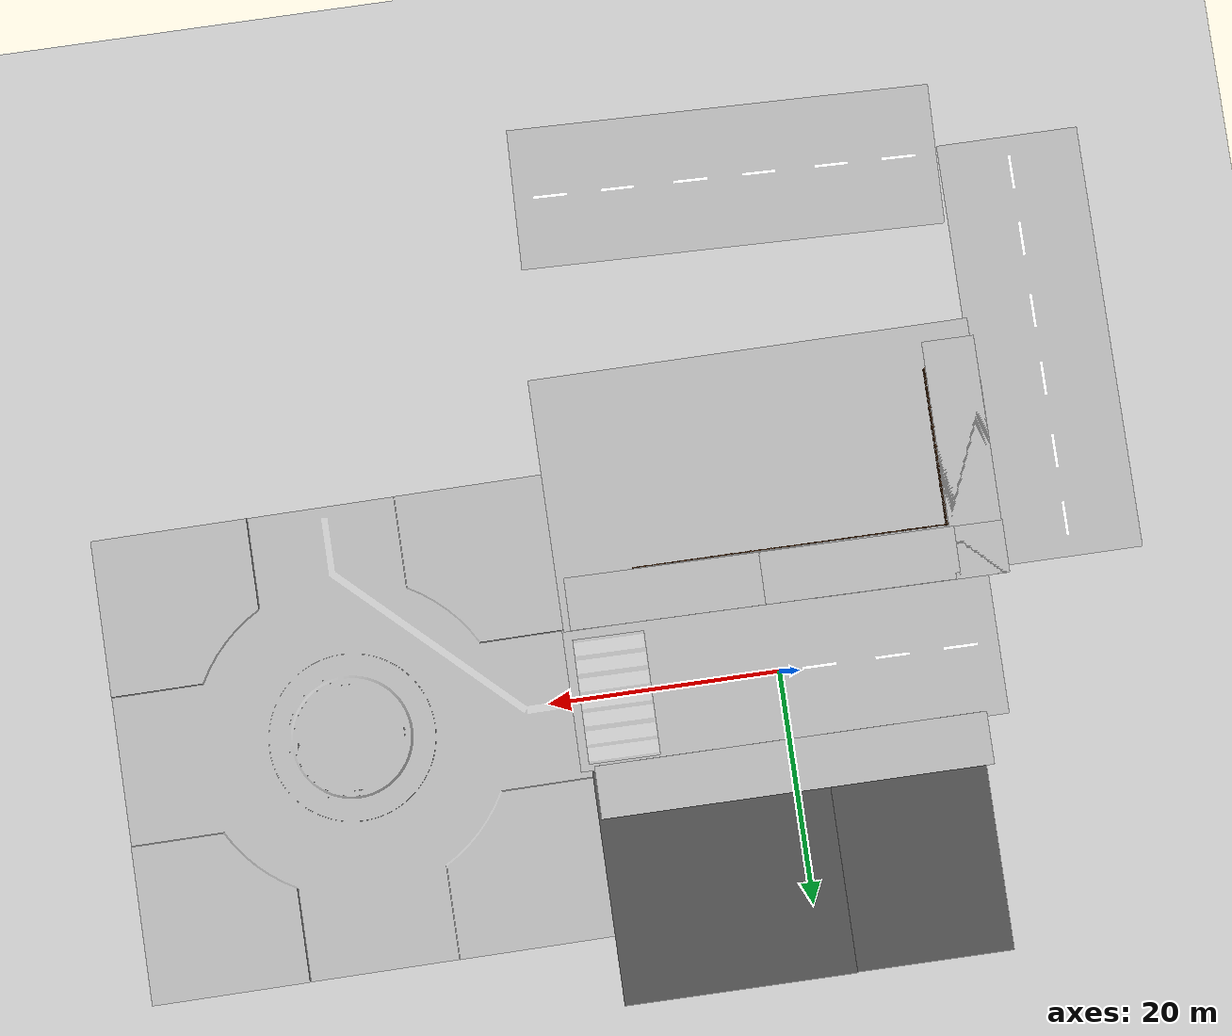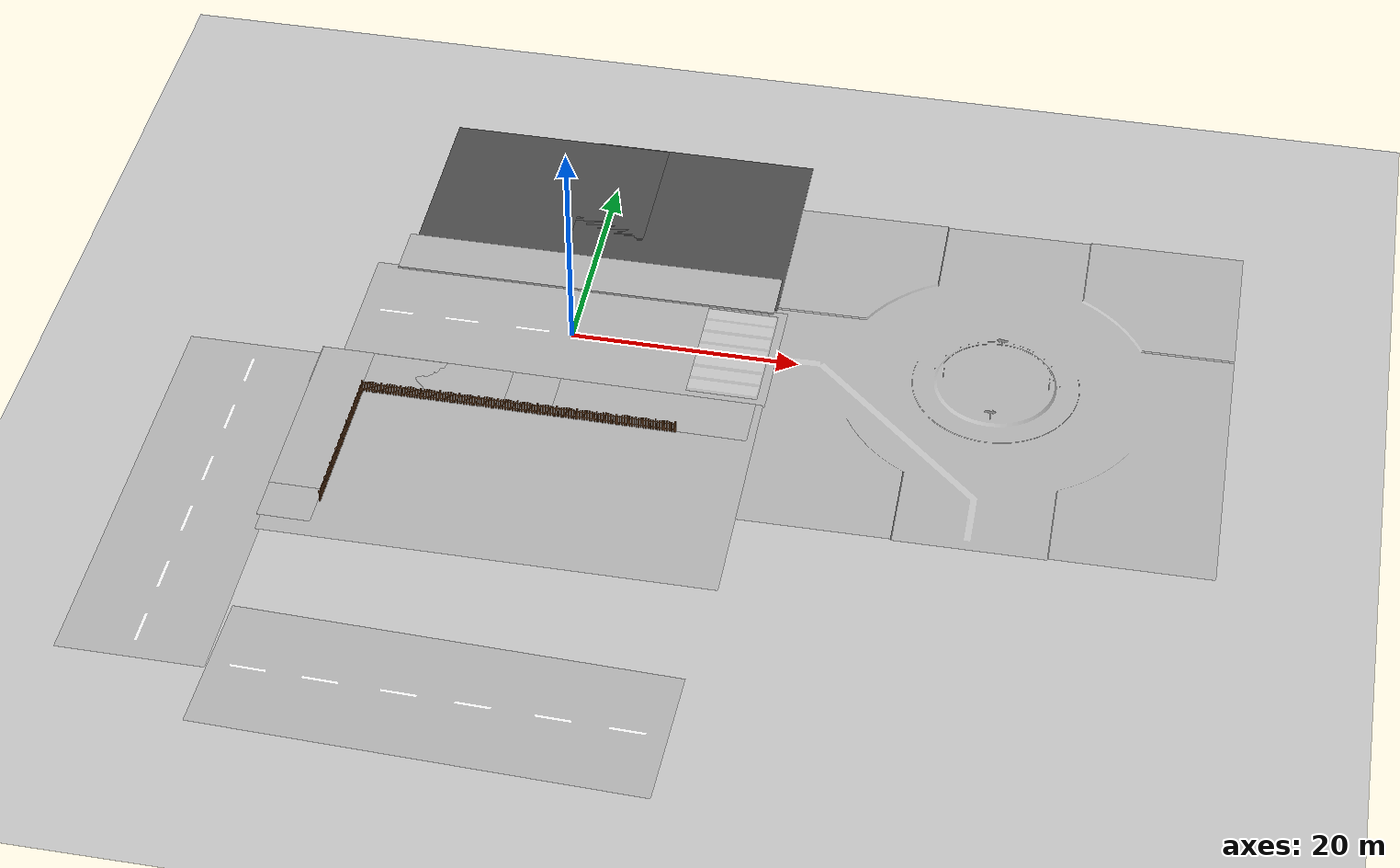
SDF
<sdf version="1.6">
 <world name="default">
  <light name="sun" type="directional">
   <pose>0 0 10 0 -0 0</pose>
   <diffuse>0.8 0.8 0.8 1</diffuse>
   <specular>0.2 0.2 0.2 1</specular>
   <attenuation>
    <range>1000</range>
    <constant>0.9</constant>
    <linear>0.01</linear>
    <quadratic>0.001</quadratic>
   </attenuation>
   <direction>-0.5 0.1 -0.9</direction>
  </light>
  <model name="ground_plane">
   <static>1</static>
   <link name="link">
    <collision name="collision">
     <geometry><plane><normal>0 0 1</normal><size>100 100</size></plane></geometry>
     <surface><friction><ode><mu>100</mu><mu2>50</mu2></ode></friction></surface>
    </collision>
    <visual name="visual">
     <cast_shadows>0</cast_shadows>
     <geometry><plane><normal>0 0 1</normal><size>100 100</size></plane></geometry>
     <material>
      <script><uri>file://media/materials/scripts/gazebo.material</uri><name>Gazebo/Grey</name></script>
     </material>
    </visual>
   </link>
  </model>
  <gravity>0 0 -9.8</gravity>
  <magnetic_field>6e-06 2.3e-05 -4.2e-05</magnetic_field>
  <atmosphere type="adiabatic"/>
  <physics name="default_physics" default="0" type="ode">
   <max_step_size>0.001</max_step_size>
   <real_time_factor>1</real_time_factor>
   <real_time_update_rate>1000</real_time_update_rate>
  </physics>
  <scene><ambient>0.4 0.4 0.4 1</ambient><background>0.7 0.7 0.7 1</background><shadows>1</shadows></scene>
  <spherical_coordinates>
   <surface_model>EARTH_WGS84</surface_model>
   <latitude_deg>0</latitude_deg>
   <longitude_deg>0</longitude_deg>
   <elevation>0</elevation>
   <heading_deg>0</heading_deg>
  </spherical_coordinates>
  <model name="street">
   <static>1</static>
   <link name="body">
    <inertial>
     <pose>1 2 5 -1.14159 1.14159 -1.14159</pose>
     <mass>30</mass>
     <inertia><ixx>0.5</ixx><ixy>0.5</ixy><ixz>0.5</ixz><iyy>0.5</iyy><iyz>0.5</iyz><izz>0.5</izz></inertia>
    </inertial>
    <collision name="visual">
     <geometry><mesh><uri>model://street/meshes/street.dae</uri></mesh></geometry>
    </collision>
    <visual name="visual"><geometry><mesh><uri>model://street/meshes/street.dae</uri></mesh></geometry></visual>
   </link>
   <pose>-2.27954 -0.200128 0 0 -0 1.56801</pose>
  </model>
  <model name="Kreisverkehr">
   <static>1</static>
   <link name="body">
    <inertial>
     <pose>1 2 5 -1.14159 1.14159 -1.14159</pose>
     <mass>30</mass>
     <inertia><ixx>0.5</ixx><ixy>0.5</ixy><ixz>0.5</ixz><iyy>0.5</iyy><iyz>0.5</iyz><izz>0.5</izz></inertia>
    </inertial>
    <collision name="visual">
     <geometry><mesh><uri>model://Kreisverkehr/meshes/Kreisverkehr.dae</uri></mesh></geometry>
    </collision>
    <visual name="visual">
     <geometry><mesh><uri>model://Kreisverkehr/meshes/Kreisverkehr.dae</uri></mesh></geometry>
    </visual>
   </link>
   <pose>37.0928 0.464085 -0.403003 0 -0 1.57926</pose>
  </model>
  <model name="Zebrastreifen">
   <static>1</static>
   <link name="body">
    <inertial>
     <pose>1 2 5 -1.14159 1.14159 -1.14159</pose>
     <mass>30</mass>
     <inertia><ixx>0.5</ixx><ixy>0.5</ixy><ixz>0.5</ixz><iyy>0.5</iyy><iyz>0.5</iyz><izz>0.5</izz></inertia>
    </inertial>
    <collision name="visual">
     <geometry><mesh><uri>model://Zebrastreifen/meshes/Zebrastreifen.dae</uri></mesh></geometry>
    </collision>
    <visual name="visual">
     <geometry><mesh><uri>model://Zebrastreifen/meshes/Zebrastreifen.dae</uri></mesh></geometry>
    </visual>
   </link>
   <pose>15.6395 -0.133005 0.165336 0 -0 1.56468</pose>
  </model>
  <model name="Bordstein">
   <static>1</static>
   <link name="body">
    <inertial>
     <pose>1 2 5 -1.14159 1.14159 -1.14159</pose>
     <mass>30</mass>
     <inertia><ixx>0.5</ixx><ixy>0.5</ixy><ixz>0.5</ixz><iyy>0.5</iyy><iyz>0.5</iyz><izz>0.5</izz></inertia>
    </inertial>
    <collision name="visual">
     <geometry><mesh><uri>model://Bordstein/meshes/Bordstein.dae</uri></mesh></geometry>
    </collision>
    <visual name="visual">
     <geometry><mesh><uri>model://Bordstein/meshes/Bordstein.dae</uri></mesh></geometry>
    </visual>
   </link>
   <pose>10.518 8.62828 -0.148633 0 -0 0</pose>
  </model>
  <model name="Bordstein_clone">
   <static>1</static>
   <link name="body">
    <inertial>
     <pose>1 2 5 -1.14159 1.14159 -1.14159</pose>
     <mass>30</mass>
     <inertia><ixx>0.5</ixx><ixy>0.5</ixy><ixz>0.5</ixz><iyy>0.5</iyy><iyz>0.5</iyz><izz>0.5</izz></inertia>
    </inertial>
    <collision name="visual">
     <geometry><mesh><uri>model://Bordstein/meshes/Bordstein.dae</uri></mesh></geometry>
    </collision>
    <visual name="visual">
     <geometry><mesh><uri>model://Bordstein/meshes/Bordstein.dae</uri></mesh></geometry>
    </visual>
   </link>
   <pose>-6.45327 8.64323 -0.148633 0 -0 0</pose>
  </model>
  <model name="Bordstein_clone_0">
   <static>1</static>
   <link name="body">
    <inertial>
     <pose>1 2 5 -1.14159 1.14159 -1.14159</pose>
     <mass>30</mass>
     <inertia><ixx>0.5</ixx><ixy>0.5</ixy><ixz>0.5</ixz><iyy>0.5</iyy><iyz>0.5</iyz><izz>0.5</izz></inertia>
    </inertial>
    <collision name="visual">
     <geometry><mesh><uri>model://Bordstein/meshes/Bordstein.dae</uri></mesh></geometry>
    </collision>
    <visual name="visual">
     <geometry><mesh><uri>model://Bordstein/meshes/Bordstein.dae</uri></mesh></geometry>
    </visual>
   </link>
   <pose>6.69822 -8.7492 -0.148633 0 -0 3.13505</pose>
  </model>
  <model name="Bordstein_clone_0_clone">
   <static>1</static>
   <link name="body">
    <inertial>
     <pose>1 2 5 -1.14159 1.14159 -1.14159</pose>
     <mass>30</mass>
     <inertia><ixx>0.5</ixx><ixy>0.5</ixy><ixz>0.5</ixz><iyy>0.5</iyy><iyz>0.5</iyz><izz>0.5</izz></inertia>
    </inertial>
    <collision name="visual">
     <geometry><mesh><uri>model://Bordstein/meshes/Bordstein.dae</uri></mesh></geometry>
    </collision>
    <visual name="visual">
     <geometry><mesh><uri>model://Bordstein/meshes/Bordstein.dae</uri></mesh></geometry>
    </visual>
   </link>
   <pose>-10.2586 -8.63419 -0.148633 0 -0 3.13505</pose>
  </model>
  <model name="Wiese">
   <static>1</static>
   <link name="body">
    <inertial>
     <pose>1 2 5 -1.14159 1.14159 -1.14159</pose>
     <mass>30</mass>
     <inertia><ixx>0.5</ixx><ixy>0.5</ixy><ixz>0.5</ixz><iyy>0.5</iyy><iyz>0.5</iyz><izz>0.5</izz></inertia>
    </inertial>
    <collision name="visual">
     <geometry><mesh><uri>model://Wiese/meshes/Wiese.dae</uri></mesh></geometry>
    </collision>
    <visual name="visual"><geometry><mesh><uri>model://Wiese/meshes/Wiese.dae</uri></mesh></geometry></visual>
   </link>
   <pose>1.11471 -17.0042 -0.147311 0 -0 1.57459</pose>
  </model>
  <model name="asphalt_plane">
   <static>1</static>
   <link name="link">
    <collision name="collision"><geometry><box><size>20 20 0.1</size></box></geometry></collision>
    <visual name="visual">
     <cast_shadows>0</cast_shadows>
     <geometry><box><size>20 20 0.1</size></box></geometry>
     <material>
      <script>
       <uri>model://asphalt_plane/materials/scripts</uri>
       <uri>model://asphalt_plane/materials/textures</uri>
       <name>vrc/asphalt</name>
      </script>
     </material>
    </visual>
   </link>
   <pose>7.13125 16.2251 0.261368 0 -0 0</pose>
  </model>
  <model name="Zaun">
   <static>1</static>
   <link name="body">
    <inertial>
     <pose>1 2 5 -1.14159 1.14159 -1.14159</pose>
     <mass>30</mass>
     <inertia><ixx>0.5</ixx><ixy>0.5</ixy><ixz>0.5</ixz><iyy>0.5</iyy><iyz>0.5</iyz><izz>0.5</izz></inertia>
    </inertial>
    <collision name="visual"><geometry><mesh><uri>model://Zaun/meshes/Zaun.dae</uri></mesh></geometry></collision>
    <visual name="visual"><geometry><mesh><uri>model://Zaun/meshes/Zaun.dae</uri></mesh></geometry></visual>
   </link>
   <pose>5.45784 -13.4549 -0.670672 0 0 -0.001849</pose>
  </model>
  <light name="user_point_light_0" type="point">
   <pose>8.93901 -0.219494 1 0 -0 0</pose>
   <diffuse>0.5 0.5 0.5 1</diffuse>
   <specular>0.1 0.1 0.1 1</specular>
   <attenuation>
    <range>20</range>
    <constant>0.5</constant>
    <linear>0.01</linear>
    <quadratic>0.001</quadratic>
   </attenuation>
   <cast_shadows>0</cast_shadows>
   <direction>0 0 -1</direction>
  </light>
  <light name="user_point_light_1" type="point">
   <pose>1.26105 0.200647 1 0 -0 0</pose>
   <diffuse>0.5 0.5 0.5 1</diffuse>
   <specular>0.1 0.1 0.1 1</specular>
   <attenuation>
    <range>20</range>
    <constant>0.5</constant>
    <linear>0.01</linear>
    <quadratic>0.001</quadratic>
   </attenuation>
   <cast_shadows>0</cast_shadows>
   <direction>0 0 -1</direction>
  </light>
  <light name="user_point_light_2" type="point">
   <pose>-7.64211 0.532158 1 0 -0 0</pose>
   <diffuse>0.5 0.5 0.5 1</diffuse>
   <specular>0.1 0.1 0.1 1</specular>
   <attenuation>
    <range>20</range>
    <constant>0.5</constant>
    <linear>0.01</linear>
    <quadratic>0.001</quadratic>
   </attenuation>
   <cast_shadows>0</cast_shadows>
   <direction>0 0 -1</direction>
  </light>
  <light name="user_point_light_3" type="point">
   <pose>-17.036 -0.109267 1 0 -0 0</pose>
   <diffuse>0.5 0.5 0.5 1</diffuse>
   <specular>0.1 0.1 0.1 1</specular>
   <attenuation>
    <range>20</range>
    <constant>0.5</constant>
    <linear>0.01</linear>
    <quadratic>0.001</quadratic>
   </attenuation>
   <cast_shadows>0</cast_shadows>
   <direction>0 0 -1</direction>
  </light>
  <model name="Zaun_clone">
   <static>1</static>
   <link name="body">
    <inertial>
     <pose>1 2 5 -1.14159 1.14159 -1.14159</pose>
     <mass>30</mass>
     <inertia><ixx>0.5</ixx><ixy>0.5</ixy><ixz>0.5</ixz><iyy>0.5</iyy><iyz>0.5</iyz><izz>0.5</izz></inertia>
    </inertial>
    <collision name="visual"><geometry><mesh><uri>model://Zaun/meshes/Zaun.dae</uri></mesh></geometry></collision>
    <visual name="visual"><geometry><mesh><uri>model://Zaun/meshes/Zaun.dae</uri></mesh></geometry></visual>
   </link>
   <pose>-8.16769 -13.4189 -0.670672 0 0 -0.001849</pose>
  </model>
  <model name="asphalt_plane_clone">
   <static>1</static>
   <link name="link">
    <collision name="collision"><geometry><box><size>20 20 0.1</size></box></geometry></collision>
    <visual name="visual">
     <cast_shadows>0</cast_shadows>
     <geometry><box><size>20 20 0.1</size></box></geometry>
     <material>
      <script>
       <uri>model://asphalt_plane/materials/scripts</uri>
       <uri>model://asphalt_plane/materials/textures</uri>
       <name>vrc/asphalt</name>
      </script>
     </material>
    </visual>
   </link>
   <pose>-6.3537 16.1544 0.261368 0 -0 0</pose>
  </model>
  <model name="street_0">
   <static>1</static>
   <link name="body">
    <inertial>
     <pose>1 2 5 -1.14159 1.14159 -1.14159</pose>
     <mass>30</mass>
     <inertia><ixx>0.5</ixx><ixy>0.5</ixy><ixz>0.5</ixz><iyy>0.5</iyy><iyz>0.5</iyz><izz>0.5</izz></inertia>
    </inertial>
    <collision name="visual">
     <geometry><mesh><uri>model://street/meshes/street.dae</uri></mesh></geometry>
    </collision>
    <visual name="visual"><geometry><mesh><uri>model://street/meshes/street.dae</uri></mesh></geometry></visual>
   </link>
   <pose>-26.5707 -23.0772 0 0 -0 0</pose>
  </model>
  <light name="user_spot_light_0" type="spot">
   <pose>-10.685 -7.81755 1 0 -0 0</pose>
   <diffuse>0.5 0.5 0.5 1</diffuse>
   <specular>0.1 0.1 0.1 1</specular>
   <direction>0 0 -1</direction>
   <attenuation>
    <range>20</range>
    <constant>0.5</constant>
    <linear>0.01</linear>
    <quadratic>0.001</quadratic>
   </attenuation>
   <cast_shadows>0</cast_shadows>
   <spot><inner_angle>0.6</inner_angle><outer_angle>1</outer_angle><falloff>1</falloff></spot>
  </light>
  <light name="user_spot_light_0_clone" type="spot">
   <pose>5.13116 -8.0384 9.25546 0 -0 0</pose>
   <diffuse>0.5 0.5 0.5 1</diffuse>
   <specular>0.1 0.1 0.1 1</specular>
   <direction>0 0 -1</direction>
   <attenuation>
    <range>20</range>
    <constant>0.5</constant>
    <linear>0.01</linear>
    <quadratic>0.001</quadratic>
   </attenuation>
   <cast_shadows>0</cast_shadows>
   <spot><inner_angle>0.6</inner_angle><outer_angle>1</outer_angle><falloff>1</falloff></spot>
  </light>
  <model name="Bordstein_clone_0_clone_clone">
   <static>1</static>
   <link name="body">
    <inertial>
     <pose>1 2 5 -1.14159 1.14159 -1.14159</pose>
     <mass>30</mass>
     <inertia><ixx>0.5</ixx><ixy>0.5</ixy><ixz>0.5</ixz><iyy>0.5</iyy><iyz>0.5</iyz><izz>0.5</izz></inertia>
    </inertial>
    <collision name="visual">
     <geometry><mesh><uri>model://Bordstein/meshes/Bordstein.dae</uri></mesh></geometry>
    </collision>
    <visual name="visual">
     <geometry><mesh><uri>model://Bordstein/meshes/Bordstein.dae</uri></mesh></geometry>
    </visual>
   </link>
   <pose>-17.9717 -20.1257 -0.148633 0 -0 -1.57492</pose>
  </model>
  <model name="Zaun_clone_clone">
   <static>1</static>
   <link name="body">
    <inertial>
     <pose>1 2 5 -1.14159 1.14159 -1.14159</pose>
     <mass>30</mass>
     <inertia><ixx>0.5</ixx><ixy>0.5</ixy><ixz>0.5</ixz><iyy>0.5</iyy><iyz>0.5</iyz><izz>0.5</izz></inertia>
    </inertial>
    <collision name="visual"><geometry><mesh><uri>model://Zaun/meshes/Zaun.dae</uri></mesh></geometry></collision>
    <visual name="visual"><geometry><mesh><uri>model://Zaun/meshes/Zaun.dae</uri></mesh></geometry></visual>
   </link>
   <pose>-13.1279 -16.2165 -0.670672 0 -0 1.56663</pose>
  </model>
  <model name="Bordstein_clone_0_clone_clone_clone">
   <static>1</static>
   <link name="body">
    <inertial>
     <pose>1 2 5 -1.14159 1.14159 -1.14159</pose>
     <mass>30</mass>
     <inertia><ixx>0.5</ixx><ixy>0.5</ixy><ixz>0.5</ixz><iyy>0.5</iyy><iyz>0.5</iyz><izz>0.5</izz></inertia>
    </inertial>
    <collision name="visual">
     <geometry><mesh><uri>model://Bordstein/meshes/Bordstein.dae</uri></mesh></geometry>
    </collision>
    <visual name="visual">
     <geometry><mesh><uri>model://Bordstein/meshes/Bordstein.dae</uri></mesh></geometry>
    </visual>
   </link>
   <pose>-17.9893 -16.3228 -0.148633 0 0 -1.57492</pose>
  </model>
  <model name="Bordstein_clone_0_clone_clone_0">
   <static>1</static>
   <link name="body">
    <inertial>
     <pose>1 2 5 -1.14159 1.14159 -1.14159</pose>
     <mass>30</mass>
     <inertia><ixx>0.5</ixx><ixy>0.5</ixy><ixz>0.5</ixz><iyy>0.5</iyy><iyz>0.5</iyz><izz>0.5</izz></inertia>
    </inertial>
    <collision name="visual">
     <geometry><mesh><uri>model://Bordstein/meshes/Bordstein.dae</uri></mesh></geometry>
    </collision>
    <visual name="visual">
     <geometry><mesh><uri>model://Bordstein/meshes/Bordstein.dae</uri></mesh></geometry>
    </visual>
   </link>
   <pose>-14.4819 -8.58485 -0.148633 0 -0 3.13505</pose>
  </model>
  <model name="street_1">
   <static>1</static>
   <link name="body">
    <inertial>
     <pose>1 2 5 -1.14159 1.14159 -1.14159</pose>
     <mass>30</mass>
     <inertia><ixx>0.5</ixx><ixy>0.5</ixy><ixz>0.5</ixz><iyy>0.5</iyy><iyz>0.5</iyz><izz>0.5</izz></inertia>
    </inertial>
    <collision name="visual">
     <geometry><mesh><uri>model://street/meshes/street.dae</uri></mesh></geometry>
    </collision>
    <visual name="visual"><geometry><mesh><uri>model://street/meshes/street.dae</uri></mesh></geometry></visual>
   </link>
   <pose>-3.33096 -43.4884 0 0 -0 1.54294</pose>
  </model>
 </world>
</sdf>
